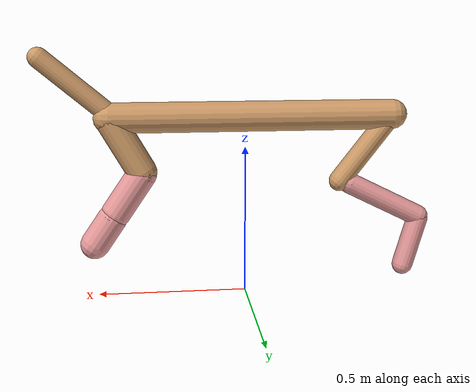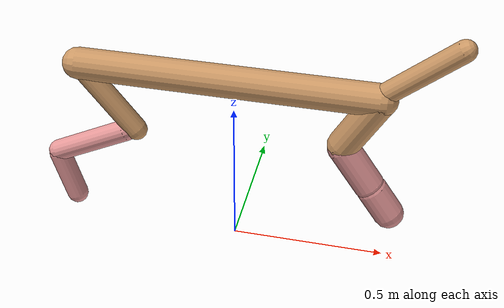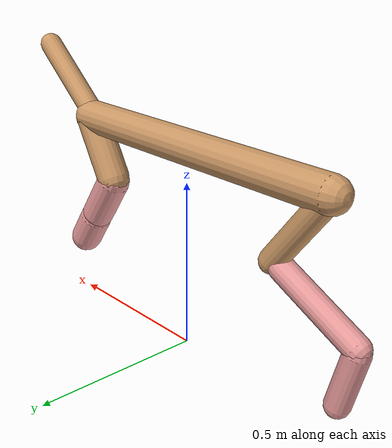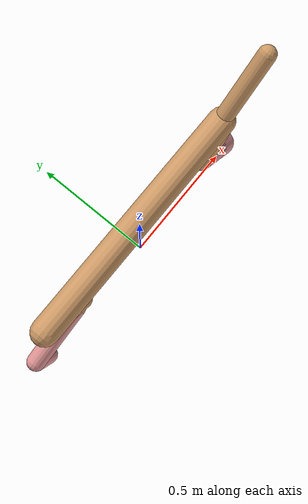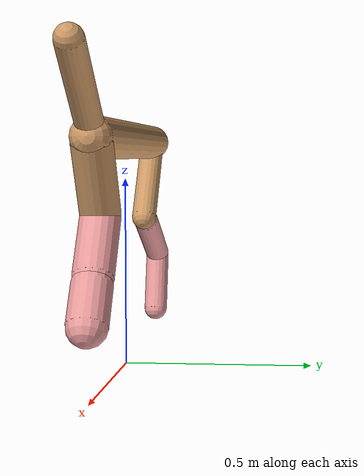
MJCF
<mujoco model="cheetah">
  <compiler angle="radian" coordinate="local" inertiafromgeom="true" settotalmass="14" />
  <default>
    <joint armature=".1" damping=".01" limited="true" solimplimit="0 .8 .03" solreflimit=".02 1" stiffness="8" />
    <geom conaffinity="0" condim="3" contype="1" friction="0.8 .1 .1" rgba="0.8 0.6 .4 1" solimp="0.0 0.8 0.01" solref="0.02 1" />
    <motor ctrllimited="true" ctrlrange="-1 1" />
  </default>
  <size nstack="300000" nuser_geom="1" />
  <option gravity="0 0 -9.81" timestep="0.01" />
  <worldbody>
    <body name="torso" pos="0.0 0.0 0.6047156862848889">
      <joint armature="0" axis="1 0 0" damping="0" limited="false" name="ignorex" pos="0 0 0" stiffness="0" type="slide" />
      <joint armature="0" axis="0 0 1" damping="0" limited="false" name="ignorez" pos="0 0 0" stiffness="0" type="slide" />
      <joint armature="0" axis="0 1 0" damping="0" limited="false" name="ignorey" pos="0 0 0" stiffness="0" type="hinge" />
      <geom fromto="-0.5 0.0 0.0 0.44872570291530656 0.0 0.0" name="torso" size="0.05089070464798814" type="capsule" />
      <geom axisangle="0 1 0 .87" name="head" pos="0.5487257029153065 0.0 0.1" size="0.03381714612191244 0.15" type="capsule" />

      <body name="bthigh" pos="-.5 0 0">
        <joint axis="0 1 0" damping="6" name="bthigh" pos="0 0 0" range="-.52 1.05" stiffness="240" type="hinge" />
        <geom axisangle="0 1 0 -3.8" name="bthigh" pos="0.09286110054679597 0.0 -0.12071943071083475" size="0.035781014251139366 0.1332913343316177" type="capsule" />
        <body name="bshin" pos="0.14572220109359194 0.0 -0.2314388614216695">
          <joint axis="0 1 0" damping="4.5" name="bshin" pos="0 0 0" range="-.785 .785" stiffness="180" type="hinge" />
          <geom axisangle="0 1 0 -2.03" name="bshin" pos="-0.12916632867848796 0.0 -0.06458316433924398" rgba="0.9 0.6 0.6 1" size="0.035781014251139366 0.1378875872396045" type="capsule" />
          <body name="bfoot" pos="-0.2583326573569759 0.0 -0.12916632867848796">
            <joint axis="0 1 0" damping="3" name="bfoot" pos="0 0 0" range="-.4 .785" stiffness="120" type="hinge" />
            <geom axisangle="0 1 0 -.27" name="bfoot" pos="0.02775725322153476 0.0 -0.0897484520829624" rgba="0.9 0.6 0.6 1" size="0.035781014251139366 0.08640955467015217" type="capsule" />
            <inertial mass="10" />
          </body>
        </body>
      </body>
      <body name="fthigh" pos="0.44872570291530656 0.0 0.0">
        <joint axis="0 1 0" damping="4.5" name="fthigh" pos="0 0 0" range="-1.5 0.8" stiffness="180" type="hinge" />
        <geom axisangle="0 1 0 .52" name="fthigh" pos="-0.05410451124755778 0.0 -0.09275059071009904" size="0.049733550891045135 0.10145325897453816" type="capsule" />
        <body name="fshin" pos="-0.10820902249511556 0.0 -0.18550118142019809">
          <joint axis="0 1 0" damping="3" name="fshin" pos="0 0 0" range="-1.2 1.1" stiffness="120" type="hinge" />
          <geom axisangle="0 1 0 -.6" name="fshin" pos="0.05027929473121719 0.0 -0.06961748501245457" rgba="0.9 0.6 0.6 1" size="0.049733550891045135 0.08085748459624846" type="capsule" />
          <body name="ffoot" pos="0.10055858946243439 0.0 -0.13923497002490914">
            <joint axis="0 1 0" damping="1.5" name="ffoot" pos="0 0 0" range="-3.1 -0.3" stiffness="60" type="hinge" />
            <geom axisangle="0 1 0 -.6" name="ffoot" pos="0.036021505425937114 0.0 -0.05603345288479107" rgba="0.9 0.6 0.6 1" size="0.049733550891045135 0.053396452091862195" type="capsule" />
            <inertial mass="10" />
          </body>
        </body>
      </body>
    </body>
  </worldbody>
  <actuator>
    <motor gear="120" joint="bthigh" name="bthigh" />
    <motor gear="90" joint="bshin" name="bshin" />
    <motor gear="60" joint="bfoot" name="bfoot" />
    <motor gear="120" joint="fthigh" name="fthigh" />
    <motor gear="60" joint="fshin" name="fshin" />
    <motor gear="30" joint="ffoot" name="ffoot" />
  </actuator>
</mujoco>
